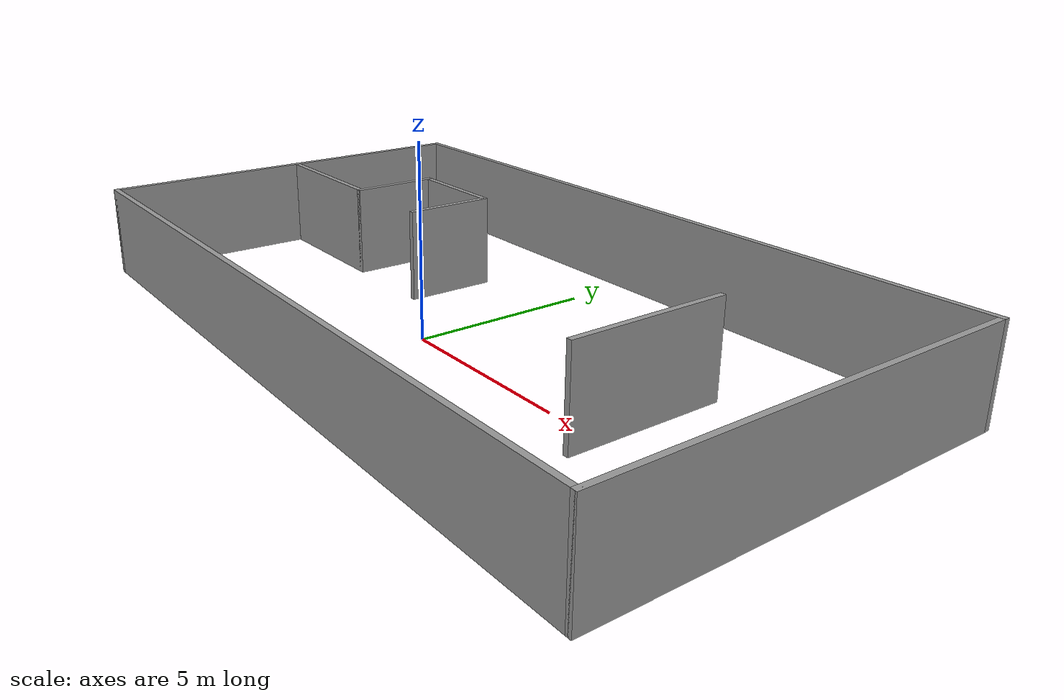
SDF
<?xml version='1.0'?>
<sdf version='1.7'>
  <model name='mymodel'>
    <pose>0.639433 1.20785 0 0 -0 0</pose>
    <link name='Wall_10'>
      <collision name='Wall_10_Collision'>
        <geometry>
          <box>
            <size>5.75 0.15 2.5</size>
          </box>
        </geometry>
        <pose>0 0 1.25 0 -0 0</pose>
      </collision>
      <visual name='Wall_10_Visual'>
        <pose>0 0 1.25 0 -0 0</pose>
        <geometry>
          <box>
            <size>5.75 0.15 2.5</size>
          </box>
        </geometry>
        <material>
          <script>
            <uri>file://media/materials/scripts/gazebo.material</uri>
            <name>Gazebo/Grey</name>
          </script>
          <ambient>1 1 1 1</ambient>
        </material>
        <meta>
          <layer>0</layer>
        </meta>
      </visual>
      <pose>-10.175 -2.75 0 0 -0 -1.5708</pose>
    </link>
    <link name='Wall_11'>
      <collision name='Wall_11_Collision'>
        <geometry>
          <box>
            <size>20.5 0.15 2.5</size>
          </box>
        </geometry>
        <pose>0 0 1.25 0 -0 0</pose>
      </collision>
      <visual name='Wall_11_Visual'>
        <pose>0 0 1.25 0 -0 0</pose>
        <geometry>
          <box>
            <size>20.5 0.15 2.5</size>
          </box>
        </geometry>
        <material>
          <script>
            <uri>file://media/materials/scripts/gazebo.material</uri>
            <name>Gazebo/Grey</name>
          </script>
          <ambient>1 1 1 1</ambient>
        </material>
        <meta>
          <layer>0</layer>
        </meta>
      </visual>
      <pose>-0 -5.55 0 0 -0 0</pose>
    </link>
    <link name='Wall_12'>
      <collision name='Wall_12_Collision'>
        <geometry>
          <box>
            <size>11.25 0.15 2.5</size>
          </box>
        </geometry>
        <pose>0 0 1.25 0 -0 0</pose>
      </collision>
      <visual name='Wall_12_Visual'>
        <pose>0 0 1.25 0 -0 0</pose>
        <geometry>
          <box>
            <size>11.25 0.15 2.5</size>
          </box>
        </geometry>
        <material>
          <script>
            <uri>file://media/materials/scripts/gazebo.material</uri>
            <name>Gazebo/Grey</name>
          </script>
          <ambient>1 1 1 1</ambient>
        </material>
        <meta>
          <layer>0</layer>
        </meta>
      </visual>
      <pose>10.175 0 0 0 -0 1.5708</pose>
    </link>
    <link name='Wall_13'>
      <collision name='Wall_13_Collision'>
        <geometry>
          <box>
            <size>20.5 0.15 2.5</size>
          </box>
        </geometry>
        <pose>0 0 1.25 0 -0 0</pose>
      </collision>
      <visual name='Wall_13_Visual'>
        <pose>0 0 1.25 0 -0 0</pose>
        <geometry>
          <box>
            <size>20.5 0.15 2.5</size>
          </box>
        </geometry>
        <material>
          <script>
            <uri>file://media/materials/scripts/gazebo.material</uri>
            <name>Gazebo/Grey</name>
          </script>
          <ambient>1 1 1 1</ambient>
        </material>
        <meta>
          <layer>0</layer>
        </meta>
      </visual>
      <pose>-0 5.55 0 0 -0 3.14159</pose>
    </link>
    <link name='Wall_14'>
      <collision name='Wall_14_Collision'>
        <geometry>
          <box>
            <size>5.5 0.15 2.5</size>
          </box>
        </geometry>
        <pose>0 0 1.25 0 -0 0</pose>
      </collision>
      <visual name='Wall_14_Visual'>
        <pose>0 0 1.25 0 -0 0</pose>
        <geometry>
          <box>
            <size>5.5 0.15 2.5</size>
          </box>
        </geometry>
        <material>
          <script>
            <uri>file://media/materials/scripts/gazebo.material</uri>
            <name>Gazebo/Grey</name>
          </script>
          <ambient>1 1 1 1</ambient>
        </material>
        <meta>
          <layer>0</layer>
        </meta>
      </visual>
      <pose>-10.175 2.875 0 0 -0 -1.5708</pose>
    </link>
    <link name='Wall_15'>
      <collision name='Wall_15_Collision'>
        <geometry>
          <box>
            <size>4.25 0.15 2.5</size>
          </box>
        </geometry>
        <pose>0 0 1.25 0 -0 0</pose>
      </collision>
      <visual name='Wall_15_Visual'>
        <pose>0 0 1.25 0 -0 0</pose>
        <geometry>
          <box>
            <size>4.25 0.15 2.5</size>
          </box>
        </geometry>
        <material>
          <script>
            <uri>file://media/materials/scripts/gazebo.material</uri>
            <name>Gazebo/Grey</name>
          </script>
          <ambient>1 1 1 1</ambient>
        </material>
        <meta>
          <layer>0</layer>
        </meta>
      </visual>
      <pose>-8.125 0.2 0 0 -0 0</pose>
    </link>
    <link name='Wall_16'>
      <collision name='Wall_16_Collision'>
        <geometry>
          <box>
            <size>2.5 0.15 2.5</size>
          </box>
        </geometry>
        <pose>0 0 1.25 0 -0 0</pose>
      </collision>
      <visual name='Wall_16_Visual'>
        <pose>0 0 1.25 0 -0 0</pose>
        <geometry>
          <box>
            <size>2.5 0.15 2.5</size>
          </box>
        </geometry>
        <material>
          <script>
            <uri>file://media/materials/scripts/gazebo.material</uri>
            <name>Gazebo/Grey</name>
          </script>
          <ambient>1 1 1 1</ambient>
        </material>
        <meta>
          <layer>0</layer>
        </meta>
      </visual>
      <pose>-6.075 1.375 0 0 -0 1.5708</pose>
    </link>
    <link name='Wall_17'>
      <collision name='Wall_17_Collision'>
        <geometry>
          <box>
            <size>3 0.15 2.5</size>
          </box>
        </geometry>
        <pose>0 0 1.25 0 -0 0</pose>
      </collision>
      <visual name='Wall_17_Visual'>
        <pose>0 0 1.25 0 -0 0</pose>
        <geometry>
          <box>
            <size>3 0.15 2.5</size>
          </box>
        </geometry>
        <material>
          <script>
            <uri>file://media/materials/scripts/gazebo.material</uri>
            <name>Gazebo/Grey</name>
          </script>
          <ambient>1 1 1 1</ambient>
        </material>
        <meta>
          <layer>0</layer>
        </meta>
      </visual>
      <pose>-4.65 2.55 0 0 -0 0</pose>
    </link>
    <link name='Wall_18'>
      <collision name='Wall_18_Collision'>
        <geometry>
          <box>
            <size>2.5 0.15 2.5</size>
          </box>
        </geometry>
        <pose>0 0 1.25 0 -0 0</pose>
      </collision>
      <visual name='Wall_18_Visual'>
        <pose>0 0 1.25 0 -0 0</pose>
        <geometry>
          <box>
            <size>2.5 0.15 2.5</size>
          </box>
        </geometry>
        <material>
          <script>
            <uri>file://media/materials/scripts/gazebo.material</uri>
            <name>Gazebo/Grey</name>
          </script>
          <ambient>1 1 1 1</ambient>
        </material>
        <meta>
          <layer>0</layer>
        </meta>
      </visual>
      <pose>-3.225 1.375 0 0 -0 -1.5708</pose>
    </link>
    <link name='Wall_20'>
      <collision name='Wall_20_Collision'>
        <geometry>
          <box>
            <size>4.25 0.15 2.5</size>
          </box>
        </geometry>
        <pose>0 0 1.25 0 -0 0</pose>
      </collision>
      <visual name='Wall_20_Visual'>
        <pose>0 0 1.25 0 -0 0</pose>
        <geometry>
          <box>
            <size>4.25 0.15 2.5</size>
          </box>
        </geometry>
        <material>
          <script>
            <uri>file://media/materials/scripts/gazebo.material</uri>
            <name>Gazebo/Grey</name>
          </script>
          <ambient>1 1 1 1</ambient>
        </material>
        <meta>
          <layer>0</layer>
        </meta>
      </visual>
      <pose>6.0095 -0.037014 0 0 -0 -1.5708</pose>
    </link>
    <static>1</static>
  </model>
</sdf>
